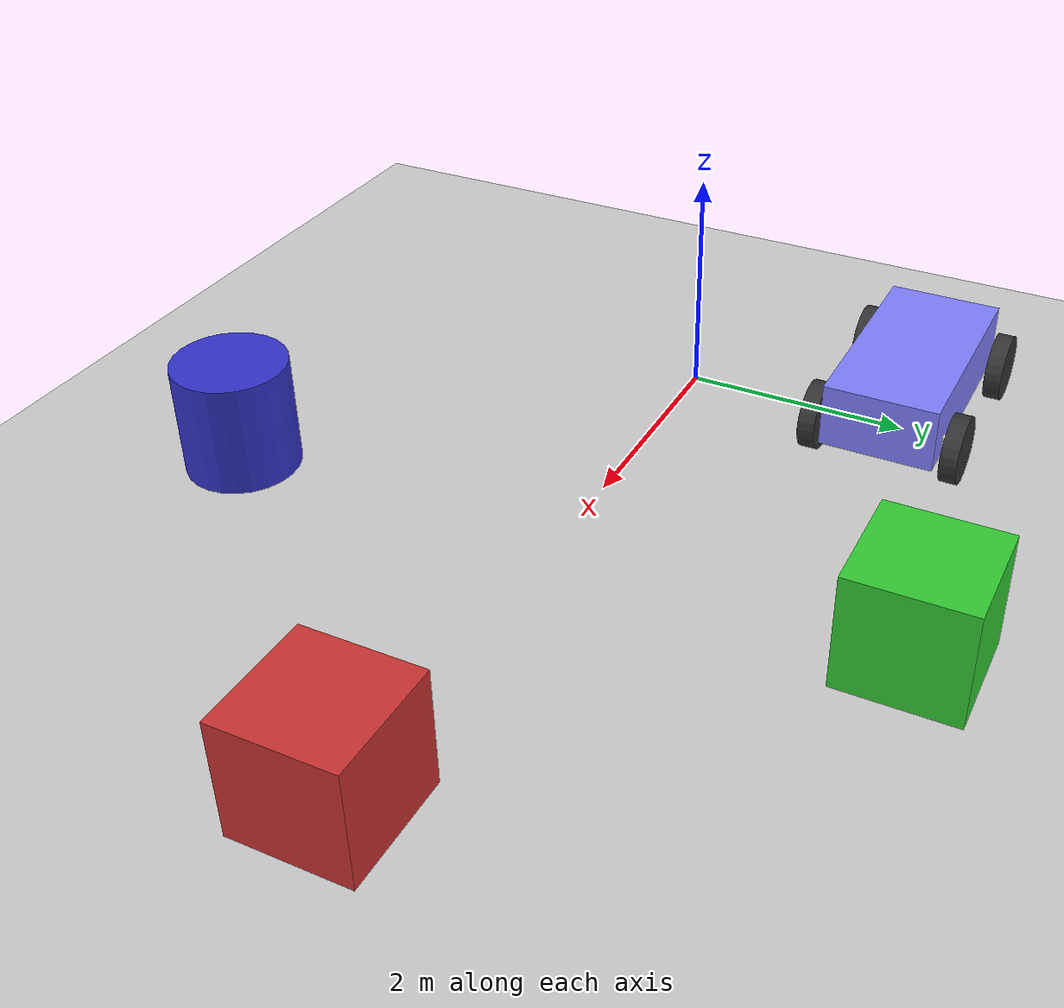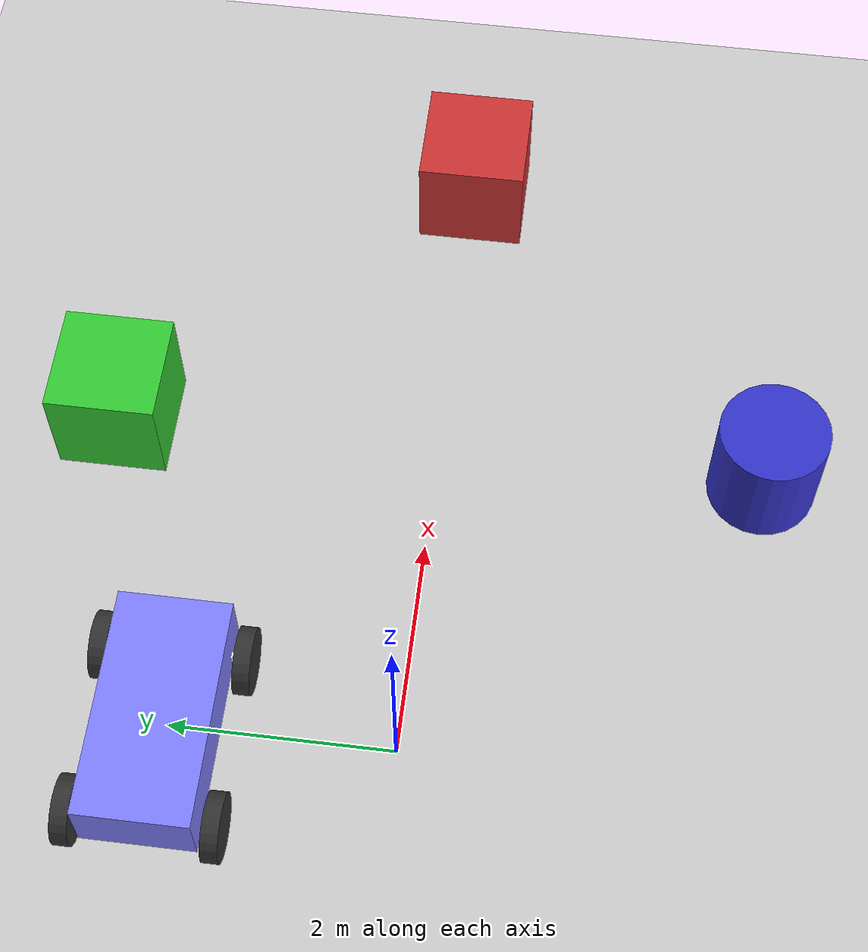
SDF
<?xml version="1.0" ?>
<sdf version="1.6">
  <world name="ackermann_steering">

    <physics name="1ms" type="ignored">
      <max_step_size>0.001</max_step_size>
      <real_time_factor>1.0</real_time_factor>
    </physics>
    <plugin
      filename="gz-sim-physics-system"
      name="gz::sim::systems::Physics">
    </plugin>
    <plugin
      filename="gz-sim-user-commands-system"
      name="gz::sim::systems::UserCommands">
    </plugin>
    <plugin
      filename="gz-sim-scene-broadcaster-system"
      name="gz::sim::systems::SceneBroadcaster">
    </plugin>
    <plugin
      filename="gz-sim-sensors-system"
      name="gz::sim::systems::Sensors">
      <render_engine>ogre2</render_engine>
    </plugin>
    <plugin
      filename="gz-sim-imu-system"
      name="gz::sim::systems::Imu">
    </plugin>

    <light type="directional" name="sun">
      <cast_shadows>true</cast_shadows>
      <pose>0 0 10 0 0 0</pose>
      <diffuse>1 1 1 1</diffuse>
      <specular>0.5 0.5 0.5 1</specular>
      <attenuation>
        <range>1000</range>
        <constant>0.9</constant>
        <linear>0.01</linear>
        <quadratic>0.001</quadratic>
      </attenuation>
      <direction>-0.5 0.1 -0.9</direction>
    </light>

    <model name="ground_plane">
      <static>true</static>
      <link name="link">
        <collision name="collision">
          <geometry>
            <plane>
              <normal>0 0 1</normal>
              <size>100 100</size>
            </plane>
          </geometry>
          <surface>
            <friction>
              <ode>
                <mu>50</mu>
              </ode>
              <bullet>
                <friction>1</friction>
                <rolling_friction>0.1</rolling_friction>
              </bullet>
            </friction>
          </surface>
        </collision>
        <visual name="visual">
          <geometry>
            <plane>
              <normal>0 0 1</normal>
              <size>100 100</size>
            </plane>
          </geometry>
          <material>
            <ambient>0.8 0.8 0.8 1</ambient>
            <diffuse>0.8 0.8 0.8 1</diffuse>
            <specular>0.8 0.8 0.8 1</specular>
          </material>
        </visual>
      </link>
    </model>

    <include>
      <uri>model://vehicle_blue</uri>
      <pose>0 2 0.325 0 0 0</pose>
    </include>

    <!-- Obstacles for the lidar to detect -->
    <model name="obstacle_box_front">
      <static>true</static>
      <pose>6 0 0.5 0 0 0</pose>
      <link name="link">
        <collision name="collision">
          <geometry><box><size>1 1 1</size></box></geometry>
        </collision>
        <visual name="visual">
          <geometry><box><size>1 1 1</size></box></geometry>
          <material>
            <ambient>0.8 0.2 0.2 1</ambient>
            <diffuse>0.8 0.2 0.2 1</diffuse>
          </material>
        </visual>
      </link>
    </model>

    <model name="obstacle_box_left">
      <static>true</static>
      <pose>3 3 0.5 0 0 0</pose>
      <link name="link">
        <collision name="collision">
          <geometry><box><size>1 1 1</size></box></geometry>
        </collision>
        <visual name="visual">
          <geometry><box><size>1 1 1</size></box></geometry>
          <material>
            <ambient>0.2 0.8 0.2 1</ambient>
            <diffuse>0.2 0.8 0.2 1</diffuse>
          </material>
        </visual>
      </link>
    </model>

    <model name="obstacle_cylinder_right">
      <static>true</static>
      <pose>3 -3 0.5 0 0 0</pose>
      <link name="link">
        <collision name="collision">
          <geometry><cylinder><radius>0.5</radius><length>1</length></cylinder></geometry>
        </collision>
        <visual name="visual">
          <geometry><cylinder><radius>0.5</radius><length>1</length></cylinder></geometry>
          <material>
            <ambient>0.2 0.2 0.8 1</ambient>
            <diffuse>0.2 0.2 0.8 1</diffuse>
          </material>
        </visual>
      </link>
    </model>

  </world>
</sdf>

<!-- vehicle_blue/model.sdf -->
<sdf version="1.9">
    <model name='vehicle_blue'>

      <link name='chassis'>
        <pose>-0.151427 -0 0.175 0 -0 0</pose>
        <inertial>
          <mass>1.14395</mass>
          <inertia>
            <ixx>0.126164</ixx>
            <ixy>0</ixy>
            <ixz>0</ixz>
            <iyy>0.416519</iyy>
            <iyz>0</iyz>
            <izz>0.481014</izz>
          </inertia>
        </inertial>
        <visual name='visual'>
          <geometry>
            <box>
              <size>2.01142 1 0.568726</size>
            </box>
          </geometry>
          <material>
            <ambient>0.5 0.5 1.0 1</ambient>
            <diffuse>0.5 0.5 1.0 1</diffuse>
            <specular>0.0 0.0 1.0 1</specular>
          </material>
        </visual>
        <collision name='collision'>
          <geometry>
            <box>
              <size>2.01142 1 0.568726</size>
            </box>
          </geometry>
        </collision>
        <sensor name="gpu_lidar" type="gpu_lidar">
          <pose>0 0 0.4 0 0 0</pose>
          <topic>scan</topic>
          <update_rate>10</update_rate>
          <lidar>
            <scan>
              <horizontal>
                <samples>640</samples>
                <resolution>1</resolution>
                <min_angle>-2.356</min_angle>
                <max_angle>2.356</max_angle>
              </horizontal>
              <vertical>
                <samples>1</samples>
                <min_angle>0</min_angle>
                <max_angle>0</max_angle>
              </vertical>
            </scan>
            <range>
              <min>0.1</min>
              <max>30.0</max>
              <resolution>0.01</resolution>
            </range>
          </lidar>
          <always_on>1</always_on>
          <visualize>true</visualize>
        </sensor>
        <sensor name="imu" type="imu">
          <pose>0 0 0.1 0 0 0</pose>
          <topic>imu</topic>
          <update_rate>100</update_rate>
          <always_on>1</always_on>
        </sensor>
      </link>

      <link name='front_left_wheel'>
        <pose>0.554283 0.625029 -0.025 -1.5707 0 0</pose>
        <inertial>
          <mass>2</mass>
          <inertia>
            <ixx>0.145833</ixx>
            <ixy>0</ixy>
            <ixz>0</ixz>
            <iyy>0.145833</iyy>
            <iyz>0</iyz>
            <izz>0.125</izz>
          </inertia>
        </inertial>
        <visual name='visual'>
          <geometry>
            <cylinder>
              <length>0.15</length>
              <radius>0.3</radius>
            </cylinder>
          </geometry>
          <material>
            <ambient>0.2 0.2 0.2 1</ambient>
            <diffuse>0.2 0.2 0.2 1</diffuse>
            <specular>0.2 0.2 0.2 1</specular>
          </material>
        </visual>
        <collision name='collision'>
          <geometry>
            <cylinder>
              <length>0.15</length>
              <radius>0.3</radius>
            </cylinder>
          </geometry>
          <surface>
            <friction>
              <ode>
                <mu>0.5</mu>
                <mu2>1.0</mu2>
                <fdir1>0 0 1</fdir1>
              </ode>
              <bullet>
                <friction>0.5</friction>
                <friction2>1</friction2>
                <rolling_friction>0.1</rolling_friction>
              </bullet>
            </friction>
          </surface>
        </collision>
      </link>

      <link name='rear_left_wheel'>
        <pose>-0.957138 0.625029 -0.025 -1.5707 0 0</pose>
        <inertial>
          <mass>2</mass>
          <inertia>
            <ixx>0.145833</ixx>
            <ixy>0</ixy>
            <ixz>0</ixz>
            <iyy>0.145833</iyy>
            <iyz>0</iyz>
            <izz>0.125</izz>
          </inertia>
        </inertial>
        <visual name='visual'>
          <geometry>
            <cylinder>
              <length>0.15</length>
              <radius>0.3</radius>
            </cylinder>
          </geometry>
          <material>
            <ambient>0.2 0.2 0.2 1</ambient>
            <diffuse>0.2 0.2 0.2 1</diffuse>
            <specular>0.2 0.2 0.2 1</specular>
          </material>
        </visual>
        <collision name='collision'>
          <geometry>
            <cylinder>
              <length>0.15</length>
              <radius>0.3</radius>
            </cylinder>
          </geometry>
          <surface>
            <friction>
              <ode>
                <mu>0.5</mu>
                <mu2>1.0</mu2>
                <fdir1>0 0 1</fdir1>
              </ode>
              <bullet>
                <friction>0.5</friction>
                <friction2>1</friction2>
                <rolling_friction>0.5</rolling_friction>
              </bullet>
            </friction>
          </surface>
        </collision>
      </link>

      <link name='front_right_wheel'>
        <pose>0.554282 -0.625029 -0.025 -1.5707 0 0</pose>
        <inertial>
          <mass>2</mass>
          <inertia>
            <ixx>0.145833</ixx>
            <ixy>0</ixy>
            <ixz>0</ixz>
            <iyy>0.145833</iyy>
            <iyz>0</iyz>
            <izz>0.125</izz>
          </inertia>
        </inertial>
        <visual name='visual'>
          <geometry>
            <cylinder>
              <length>0.15</length>
              <radius>0.3</radius>
            </cylinder>
          </geometry>
          <material>
            <ambient>0.2 0.2 0.2 1</ambient>
            <diffuse>0.2 0.2 0.2 1</diffuse>
            <specular>0.2 0.2 0.2 1</specular>
          </material>
        </visual>
        <collision name='collision'>
          <geometry>
            <cylinder>
              <length>0.15</length>
              <radius>0.3</radius>
            </cylinder>
          </geometry>
          <surface>
            <friction>
              <ode>
                <mu>0.5</mu>
                <mu2>1.0</mu2>
                <fdir1>0 0 1</fdir1>
              </ode>
              <bullet>
                <friction>0.5</friction>
                <friction2>1</friction2>
                <rolling_friction>0.1</rolling_friction>
              </bullet>
            </friction>
          </surface>
        </collision>
      </link>

      <link name='rear_right_wheel'>
        <pose>-0.957138 -0.625029 -0.025 -1.5707 0 0</pose>
        <inertial>
          <mass>2</mass>
          <inertia>
            <ixx>0.145833</ixx>
            <ixy>0</ixy>
            <ixz>0</ixz>
            <iyy>0.145833</iyy>
            <iyz>0</iyz>
            <izz>0.125</izz>
          </inertia>
        </inertial>
        <visual name='visual'>
          <geometry>
            <cylinder>
              <length>0.15</length>
              <radius>0.3</radius>
            </cylinder>
          </geometry>
          <material>
            <ambient>0.2 0.2 0.2 1</ambient>
            <diffuse>0.2 0.2 0.2 1</diffuse>
            <specular>0.2 0.2 0.2 1</specular>
          </material>
        </visual>
        <collision name='collision'>
          <geometry>
            <cylinder>
              <length>0.15</length>
              <radius>0.3</radius>
            </cylinder>
          </geometry>
          <surface>
            <friction>
              <ode>
                <mu>0.5</mu>
                <mu2>1.0</mu2>
                <fdir1>0 0 1</fdir1>
              </ode>
              <bullet>
                <friction>0.5</friction>
                <friction2>1</friction2>
                <rolling_friction>0.5</rolling_friction>
              </bullet>
            </friction>
          </surface>
        </collision>
      </link>

      <link name="front_left_wheel_steering_link">
        <pose>0.554283 0.5 0.02 0 0 0</pose>
        <inertial>
          <mass>0.5</mass>
          <inertia>
            <ixx>0.0153</ixx>
            <iyy>0.025</iyy>
            <izz>0.0153</izz>
          </inertia>
        </inertial>
        <visual name="steering_link_visual">
          <pose>0 0 0 0 0 0</pose>
          <geometry>
            <cylinder>
              <length>0.1</length>
              <radius>0.03</radius>
            </cylinder>
          </geometry>
          <material>
            <ambient>1 1 1</ambient>
            <diffuse>1 1 1</diffuse>
          </material>
        </visual>
      </link>

      <link name="front_right_wheel_steering_link">
        <pose>0.554283 -0.5 0.02 0 0 0</pose>
        <inertial>
          <mass>0.5</mass>
          <inertia>
            <ixx>0.0153</ixx>
            <iyy>0.025</iyy>
            <izz>0.0153</izz>
          </inertia>
        </inertial>
        <visual name="steering_link_visual">
          <pose>0 0 0 0 0 0</pose>
          <geometry>
            <cylinder>
              <length>0.1</length>
              <radius>0.03</radius>
            </cylinder>
          </geometry>
          <material>
            <ambient>1 1 1</ambient>
            <diffuse>1 1 1</diffuse>
          </material>
        </visual>
      </link>

      <joint name="front_left_wheel_steering_joint" type="revolute">
        <child>front_left_wheel_steering_link</child>
        <parent>chassis</parent>
        <axis>
          <xyz>0 0 1</xyz>
          <limit>
            <lower>-0.6</lower>
            <upper>+0.6</upper>
            <velocity>1.0</velocity>
            <effort>25</effort>
          </limit>
          <use_parent_model_frame>1</use_parent_model_frame>
        </axis>
      </joint>

      <joint name="front_right_wheel_steering_joint" type="revolute">
        <parent>chassis</parent>
        <child>front_right_wheel_steering_link</child>
        <axis>
          <xyz>0 0 1</xyz>
          <limit>
            <lower>-0.6</lower>
            <upper>+0.6</upper>
            <velocity>1.0</velocity>
            <effort>25</effort>
          </limit>
        </axis>
      </joint>

      <joint name='front_left_wheel_joint' type='revolute'>
        <parent>front_left_wheel_steering_link</parent>
        <child>front_left_wheel</child>
        <axis>
          <xyz>0 0 1</xyz>
          <limit>
            <lower>-1.79769e+308</lower>
            <upper>1.79769e+308</upper>
          </limit>
        </axis>
      </joint>

      <joint name='front_right_wheel_joint' type='revolute'>
        <parent>front_right_wheel_steering_link</parent>
        <child>front_right_wheel</child>
        <axis>
          <xyz>0 0 1</xyz>
          <limit>
            <lower>-1.79769e+308</lower>
            <upper>1.79769e+308</upper>
          </limit>
        </axis>
      </joint>

      <joint name='rear_left_wheel_joint' type='revolute'>
        <parent>chassis</parent>
        <child>rear_left_wheel</child>
        <axis>
          <xyz>0 0 1</xyz>
          <limit>
            <lower>-1.79769e+308</lower>
            <upper>1.79769e+308</upper>
          </limit>
        </axis>
      </joint>

      <joint name='rear_right_wheel_joint' type='revolute'>
        <parent>chassis</parent>
        <child>rear_right_wheel</child>
        <axis>
          <xyz>0 0 1</xyz>
          <limit>
            <lower>-1.79769e+308</lower>
            <upper>1.79769e+308</upper>
          </limit>
        </axis>
      </joint>

      <plugin
        filename="gz-sim-ackermann-steering-system"
        name="gz::sim::systems::AckermannSteering">
        <left_joint>front_left_wheel_joint</left_joint>
        <left_joint>rear_left_wheel_joint</left_joint>
        <right_joint>front_right_wheel_joint</right_joint>
        <right_joint>rear_right_wheel_joint</right_joint>
        <left_steering_joint>front_left_wheel_steering_joint</left_steering_joint>
        <right_steering_joint>front_right_wheel_steering_joint</right_steering_joint>
        <kingpin_width>1.0</kingpin_width>
        <steering_limit>0.5</steering_limit>
        <wheel_base>1.0</wheel_base>
        <wheel_separation>1.25</wheel_separation>
        <wheel_radius>0.3</wheel_radius>
        <min_velocity>-1</min_velocity>
        <max_velocity>1</max_velocity>
        <min_acceleration>-3</min_acceleration>
        <max_acceleration>3</max_acceleration>
      </plugin>

    </model>
</sdf>
